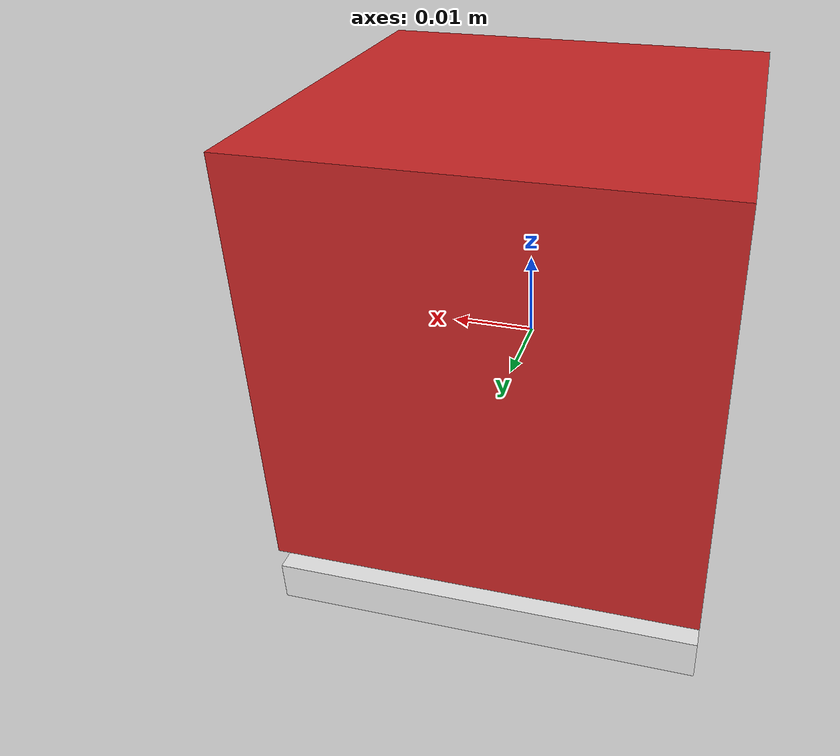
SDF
<?xml version='1.0'?>
<sdf version='1.6'>
  <model name='stone'>
    <link name='link'>
      <pose>0 0 0.005 0 0 0</pose>
      <inertial>
        <!--NOTE: Uses limestone density (i.e 2000 kg/m^3) to calculate the mass
        see https://en.wikipedia.org/wiki/Limestone
        -->
        <mass>0.1</mass>
        <inertia>
          <ixx>0.00004</ixx>
          <ixy>0</ixy>
          <ixz>0</ixz>
          <iyy>0.00004</iyy>
          <iyz>0</iyz>
          <izz>0.00004</izz>
        </inertia>
        <pose>0 0 0 0 -0 0</pose>
      </inertial>
        <self_collide>0</self_collide>
      <kinematic>0</kinematic>
      <enable_wind>0</enable_wind>
      <visual name='visual'>
        <geometry>
          <box>
            <size>0.05 0.05 0.05</size>
          </box>
        </geometry>
        <material>
          <script>
            <uri>file://media/materials/scripts/gazebo.material</uri>
            <name>Gazebo/Red</name>
          </script>
          <shader type='pixel'/>
        </material>
        <pose>0 0 0 0 -0 0</pose>
        <transparency>0</transparency>
        <cast_shadows>1</cast_shadows>
      </visual>
      <collision name='collision'>
        <laser_retro>0</laser_retro>
        <max_contacts>10</max_contacts>
        <pose>0 0 0 0 -0 0</pose>
        <geometry>
          <box>
            <size>0.05 0.05 0.05</size>
          </box>
        </geometry>
        <surface>
          <!--NOTE: Uses dynamic friction of brick on a wood surface
          see https://www.engineeringtoolbox.com/friction-coefficients-d_778.html
          -->
          <friction>
            <ode>
              <mu>5000</mu>
              <mu2>5000</mu2>
              <fdir1>0 0 0</fdir1>
              <slip1>0</slip1>
              <slip2>0</slip2>
            </ode>
            <torsional>
              <coefficient>1</coefficient>
              <patch_radius>0</patch_radius>
              <surface_radius>0</surface_radius>
              <use_patch_radius>1</use_patch_radius>
              <ode>
                <slip>0</slip>
              </ode>
            </torsional>
          </friction>
          <bounce>
            <restitution_coefficient>0</restitution_coefficient>
            <threshold>1e+06</threshold>
          </bounce>
          <contact>
            <collide_without_contact>0</collide_without_contact>
            <collide_without_contact_bitmask>1</collide_without_contact_bitmask>
            <collide_bitmask>1</collide_bitmask>
            <ode>
              <soft_cfm>0</soft_cfm>
              <soft_erp>0.2</soft_erp>
              <kp>1e+13</kp>
              <kd>1</kd>
              <max_vel>0</max_vel>
              <min_depth>0.005</min_depth>
            </ode>
            <bullet>
              <split_impulse>1</split_impulse>
              <split_impulse_penetration_threshold>-0.01</split_impulse_penetration_threshold>
              <soft_cfm>0</soft_cfm>
              <soft_erp>0.2</soft_erp>
              <kp>1e+13</kp>
              <kd>1</kd>
            </bullet>
          </contact>
        </surface>
      </collision>
    </link>

    <link name='face'>
      <pose>0.0 0.0 -0.025 0 0 0</pose>
      <inertial>
        <!--NOTE: Uses limestone density (i.e 2000 kg/m^3) to calculate the mass
        see https://en.wikipedia.org/wiki/Limestone
        -->
        <mass>0.00001</mass>
        <inertia>
          <ixx>0.000001</ixx>
          <ixy>0</ixy>
          <ixz>0</ixz>
          <iyy>0.000001</iyy>
          <iyz>0</iyz>
          <izz>0.000001</izz>
        </inertia>
        <pose>0 0 0 0 0 0</pose>
      </inertial>
        <self_collide>0</self_collide>
      <kinematic>0</kinematic>
      <enable_wind>0</enable_wind>
      <visual name='visual'>
        <geometry>
          <box>
            <size>0.05 0.05 0.005</size>
          </box>
        </geometry>
        <material>
          <script>
            <uri>file://media/materials/scripts/gazebo.material</uri>
            <name>Gazebo/White</name>
          </script>
          <shader type='pixel'/>
        </material>
        <pose>0 0 0 0 0 0</pose>
        <transparency>0</transparency>
        <cast_shadows>1</cast_shadows>
      </visual>
      <collision name='collision'>
        <laser_retro>0</laser_retro>
        <max_contacts>10</max_contacts>
        <pose>0 0 0 0 0 0</pose>
        <geometry>
          <box>
            <size>0.05 0.05 0.005</size>
          </box>
        </geometry>
        <surface>
          <!--NOTE: Uses dynamic friction of brick on a wood surface
          see https://www.engineeringtoolbox.com/friction-coefficients-d_778.html
          -->
          <friction>
            <ode>
              <mu>5000</mu>
              <mu2>5000</mu2>
              <fdir1>0 0 0</fdir1>
              <slip1>0</slip1>
              <slip2>0</slip2>
            </ode>
            <torsional>
              <coefficient>1</coefficient>
              <patch_radius>0</patch_radius>
              <surface_radius>0</surface_radius>
              <use_patch_radius>1</use_patch_radius>
              <ode>
                <slip>0</slip>
              </ode>
            </torsional>
          </friction>
          <bounce>
            <restitution_coefficient>0</restitution_coefficient>
            <threshold>1e+06</threshold>
          </bounce>
          <contact>
            <collide_without_contact>0</collide_without_contact>
            <collide_without_contact_bitmask>1</collide_without_contact_bitmask>
            <collide_bitmask>1</collide_bitmask>
            <ode>
              <soft_cfm>0</soft_cfm>
              <soft_erp>0.2</soft_erp>
              <kp>1e+13</kp>
              <kd>1</kd>
              <max_vel>0</max_vel>
              <min_depth>0.005</min_depth>
            </ode>
            <bullet>
              <split_impulse>1</split_impulse>
              <split_impulse_penetration_threshold>-0.01</split_impulse_penetration_threshold>
              <soft_cfm>0</soft_cfm>
              <soft_erp>0.2</soft_erp>
              <kp>1e+13</kp>
              <kd>1</kd>
            </bullet>
          </contact>
        </surface>
      </collision>
    </link>

    <joint name="box_joint" type="fixed">
      <parent>link</parent>
      <child>face</child>
    </joint>

    <static>0</static>
    <allow_auto_disable>1</allow_auto_disable>
  </model>
</sdf>
